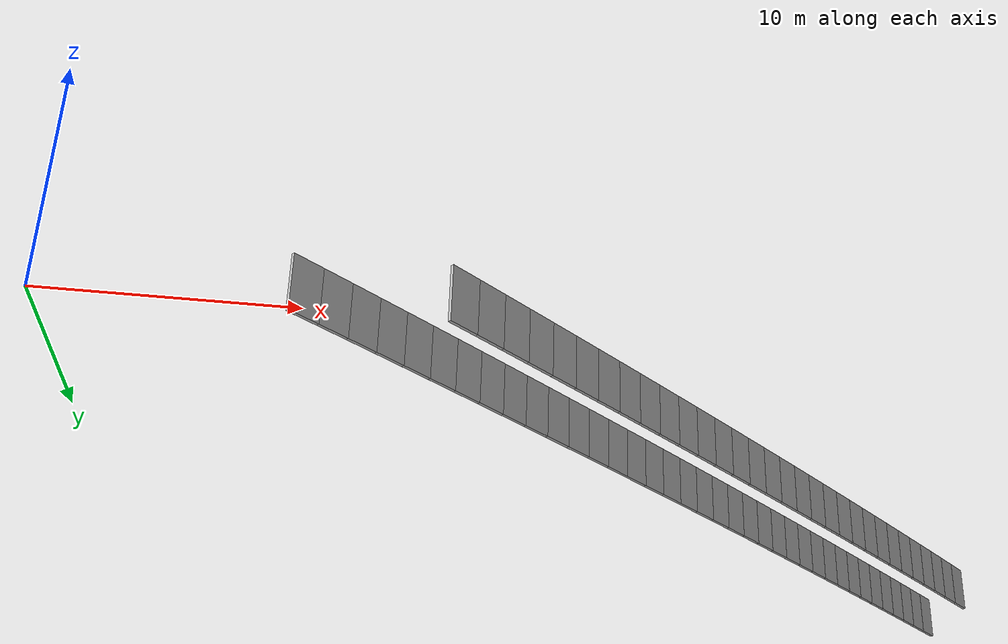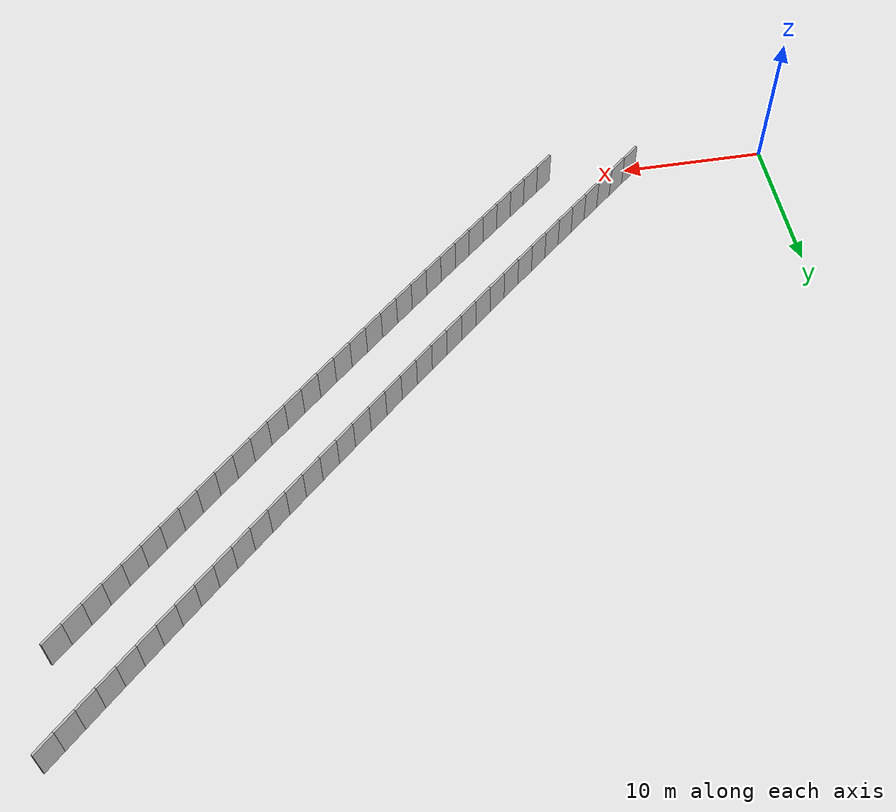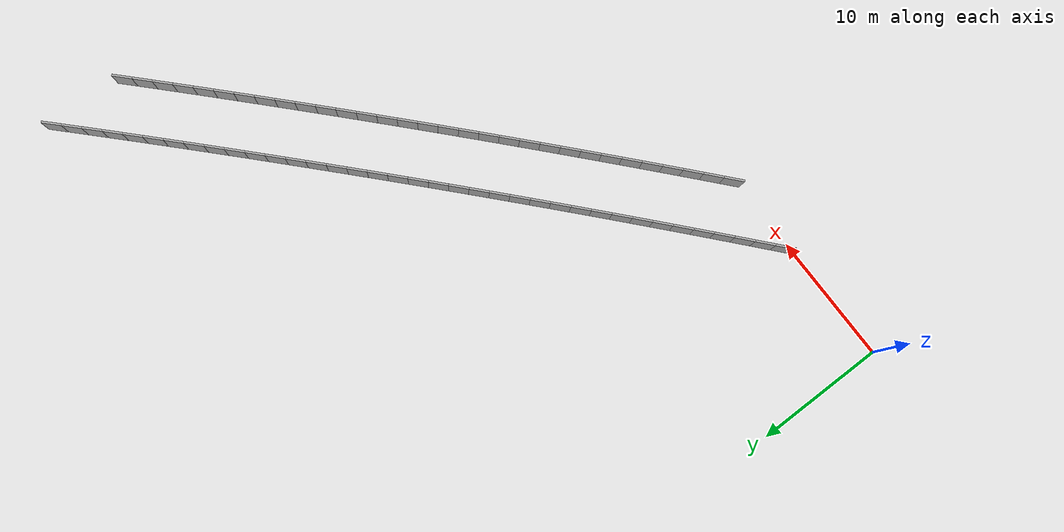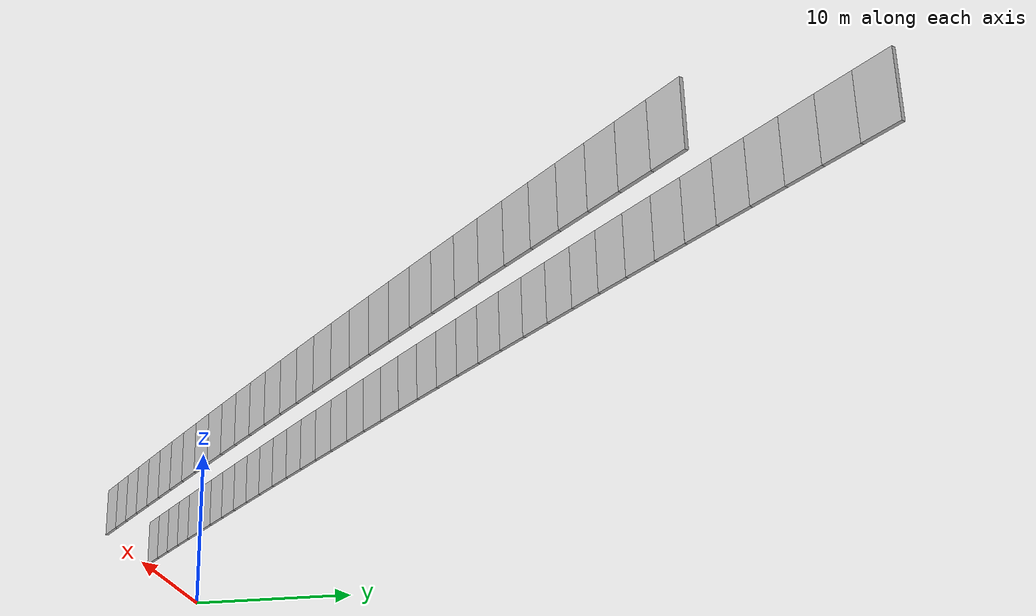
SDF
<?xml version="1.0" ?>
<sdf version="1.6">
  <model name="sps_3808">
    <pose frame="">0 0 0 0 -0 0</pose>
    <static>1</static>
    <self_collide>0</self_collide>
    <allow_auto_disable>0</allow_auto_disable>
    <link name="Wall4116">
      <kinematic>0</kinematic>
      <gravity>1</gravity>
      <self_collide>0</self_collide>
      <collision name="collision">
        <geometry>
          <box>
            <size>1.49647 0.15 2.5</size>
          </box>
        </geometry>
        <pose frame="">0 0 0 0 -0 0</pose>
      </collision>
      <visual name="visual">
        <geometry>
          <box>
            <size>1.49647 0.15 2.5</size>
          </box>
        </geometry>
        <pose frame="">0 0 0 0 -0 0</pose>
        <cast_shadows>1</cast_shadows>
        <transparency>0.0</transparency>
      </visual>
      <pose frame="">9.94445 0.671279 1.25 0 -0 0.715404</pose>
    </link>
    <link name="Wall4117">
      <kinematic>0</kinematic>
      <gravity>1</gravity>
      <self_collide>0</self_collide>
      <collision name="collision">
        <geometry>
          <box>
            <size>1.49663 0.15 2.5</size>
          </box>
        </geometry>
        <pose frame="">0 0 0 0 -0 0</pose>
      </collision>
      <visual name="visual">
        <geometry>
          <box>
            <size>1.49663 0.15 2.5</size>
          </box>
        </geometry>
        <pose frame="">0 0 0 0 -0 0</pose>
        <cast_shadows>1</cast_shadows>
        <transparency>0.0</transparency>
      </visual>
      <pose frame="">11.0732 1.65388 1.25 0 -0 0.717146</pose>
    </link>
    <link name="Wall4118">
      <kinematic>0</kinematic>
      <gravity>1</gravity>
      <self_collide>0</self_collide>
      <collision name="collision">
        <geometry>
          <box>
            <size>1.49644 0.15 2.5</size>
          </box>
        </geometry>
        <pose frame="">0 0 0 0 -0 0</pose>
      </collision>
      <visual name="visual">
        <geometry>
          <box>
            <size>1.49644 0.15 2.5</size>
          </box>
        </geometry>
        <pose frame="">0 0 0 0 -0 0</pose>
        <cast_shadows>1</cast_shadows>
        <transparency>0.0</transparency>
      </visual>
      <pose frame="">12.2004 2.63829 1.25 0 -0 0.718611</pose>
    </link>
    <link name="Wall4119">
      <kinematic>0</kinematic>
      <gravity>1</gravity>
      <self_collide>0</self_collide>
      <collision name="collision">
        <geometry>
          <box>
            <size>1.49675 0.15 2.5</size>
          </box>
        </geometry>
        <pose frame="">0 0 0 0 -0 0</pose>
      </collision>
      <visual name="visual">
        <geometry>
          <box>
            <size>1.49675 0.15 2.5</size>
          </box>
        </geometry>
        <pose frame="">0 0 0 0 -0 0</pose>
        <cast_shadows>1</cast_shadows>
        <transparency>0.0</transparency>
      </visual>
      <pose frame="">13.3261 3.6245 1.25 0 -0 0.720272</pose>
    </link>
    <link name="Wall4120">
      <kinematic>0</kinematic>
      <gravity>1</gravity>
      <self_collide>0</self_collide>
      <collision name="collision">
        <geometry>
          <box>
            <size>1.49643 0.15 2.5</size>
          </box>
        </geometry>
        <pose frame="">0 0 0 0 -0 0</pose>
      </collision>
      <visual name="visual">
        <geometry>
          <box>
            <size>1.49643 0.15 2.5</size>
          </box>
        </geometry>
        <pose frame="">0 0 0 0 -0 0</pose>
        <cast_shadows>1</cast_shadows>
        <transparency>0.0</transparency>
      </visual>
      <pose frame="">14.4502 4.6125 1.25 0 -0 0.721819</pose>
    </link>
    <link name="Wall4121">
      <kinematic>0</kinematic>
      <gravity>1</gravity>
      <self_collide>0</self_collide>
      <collision name="collision">
        <geometry>
          <box>
            <size>1.49654 0.15 2.5</size>
          </box>
        </geometry>
        <pose frame="">0 0 0 0 -0 0</pose>
      </collision>
      <visual name="visual">
        <geometry>
          <box>
            <size>1.49654 0.15 2.5</size>
          </box>
        </geometry>
        <pose frame="">0 0 0 0 -0 0</pose>
        <cast_shadows>1</cast_shadows>
        <transparency>0.0</transparency>
      </visual>
      <pose frame="">15.5727 5.60219 1.25 0 -0 0.723384</pose>
    </link>
    <link name="Wall4122">
      <kinematic>0</kinematic>
      <gravity>1</gravity>
      <self_collide>0</self_collide>
      <collision name="collision">
        <geometry>
          <box>
            <size>1.49645 0.15 2.5</size>
          </box>
        </geometry>
        <pose frame="">0 0 0 0 -0 0</pose>
      </collision>
      <visual name="visual">
        <geometry>
          <box>
            <size>1.49645 0.15 2.5</size>
          </box>
        </geometry>
        <pose frame="">0 0 0 0 -0 0</pose>
        <cast_shadows>1</cast_shadows>
        <transparency>0.0</transparency>
      </visual>
      <pose frame="">16.6937 6.59358 1.25 0 -0 0.724854</pose>
    </link>
    <link name="Wall4123">
      <kinematic>0</kinematic>
      <gravity>1</gravity>
      <self_collide>0</self_collide>
      <collision name="collision">
        <geometry>
          <box>
            <size>1.49642 0.15 2.5</size>
          </box>
        </geometry>
        <pose frame="">0 0 0 0 -0 0</pose>
      </collision>
      <visual name="visual">
        <geometry>
          <box>
            <size>1.49642 0.15 2.5</size>
          </box>
        </geometry>
        <pose frame="">0 0 0 0 -0 0</pose>
        <cast_shadows>1</cast_shadows>
        <transparency>0.0</transparency>
      </visual>
      <pose frame="">17.8131 7.58678 1.25 0 -0 0.726673</pose>
    </link>
    <link name="Wall4124">
      <kinematic>0</kinematic>
      <gravity>1</gravity>
      <self_collide>0</self_collide>
      <collision name="collision">
        <geometry>
          <box>
            <size>1.49643 0.15 2.5</size>
          </box>
        </geometry>
        <pose frame="">0 0 0 0 -0 0</pose>
      </collision>
      <visual name="visual">
        <geometry>
          <box>
            <size>1.49643 0.15 2.5</size>
          </box>
        </geometry>
        <pose frame="">0 0 0 0 -0 0</pose>
        <cast_shadows>1</cast_shadows>
        <transparency>0.0</transparency>
      </visual>
      <pose frame="">18.9308 8.58177 1.25 0 -0 0.728089</pose>
    </link>
    <link name="Wall4125">
      <kinematic>0</kinematic>
      <gravity>1</gravity>
      <self_collide>0</self_collide>
      <collision name="collision">
        <geometry>
          <box>
            <size>1.49672 0.15 2.5</size>
          </box>
        </geometry>
        <pose frame="">0 0 0 0 -0 0</pose>
      </collision>
      <visual name="visual">
        <geometry>
          <box>
            <size>1.49672 0.15 2.5</size>
          </box>
        </geometry>
        <pose frame="">0 0 0 0 -0 0</pose>
        <cast_shadows>1</cast_shadows>
        <transparency>0.0</transparency>
      </visual>
      <pose frame="">20.0471 9.57857 1.25 0 -0 0.729717</pose>
    </link>
    <link name="Wall4126">
      <kinematic>0</kinematic>
      <gravity>1</gravity>
      <self_collide>0</self_collide>
      <collision name="collision">
        <geometry>
          <box>
            <size>1.49646 0.15 2.5</size>
          </box>
        </geometry>
        <pose frame="">0 0 0 0 -0 0</pose>
      </collision>
      <visual name="visual">
        <geometry>
          <box>
            <size>1.49646 0.15 2.5</size>
          </box>
        </geometry>
        <pose frame="">0 0 0 0 -0 0</pose>
        <cast_shadows>1</cast_shadows>
        <transparency>0.0</transparency>
      </visual>
      <pose frame="">21.1618 10.5772 1.25 0 -0 0.731354</pose>
    </link>
    <link name="Wall4127">
      <kinematic>0</kinematic>
      <gravity>1</gravity>
      <self_collide>0</self_collide>
      <collision name="collision">
        <geometry>
          <box>
            <size>1.49642 0.15 2.5</size>
          </box>
        </geometry>
        <pose frame="">0 0 0 0 -0 0</pose>
      </collision>
      <visual name="visual">
        <geometry>
          <box>
            <size>1.49642 0.15 2.5</size>
          </box>
        </geometry>
        <pose frame="">0 0 0 0 -0 0</pose>
        <cast_shadows>1</cast_shadows>
        <transparency>0.0</transparency>
      </visual>
      <pose frame="">22.2747 11.5775 1.25 0 -0 0.732912</pose>
    </link>
    <link name="Wall4128">
      <kinematic>0</kinematic>
      <gravity>1</gravity>
      <self_collide>0</self_collide>
      <collision name="collision">
        <geometry>
          <box>
            <size>1.49665 0.15 2.5</size>
          </box>
        </geometry>
        <pose frame="">0 0 0 0 -0 0</pose>
      </collision>
      <visual name="visual">
        <geometry>
          <box>
            <size>1.49665 0.15 2.5</size>
          </box>
        </geometry>
        <pose frame="">0 0 0 0 -0 0</pose>
        <cast_shadows>1</cast_shadows>
        <transparency>0.0</transparency>
      </visual>
      <pose frame="">23.3863 12.5796 1.25 0 -0 0.734422</pose>
    </link>
    <link name="Wall4129">
      <kinematic>0</kinematic>
      <gravity>1</gravity>
      <self_collide>0</self_collide>
      <collision name="collision">
        <geometry>
          <box>
            <size>1.49665 0.15 2.5</size>
          </box>
        </geometry>
        <pose frame="">0 0 0 0 -0 0</pose>
      </collision>
      <visual name="visual">
        <geometry>
          <box>
            <size>1.49665 0.15 2.5</size>
          </box>
        </geometry>
        <pose frame="">0 0 0 0 -0 0</pose>
        <cast_shadows>1</cast_shadows>
        <transparency>0.0</transparency>
      </visual>
      <pose frame="">24.4963 13.5835 1.25 0 -0 0.736068</pose>
    </link>
    <link name="Wall4130">
      <kinematic>0</kinematic>
      <gravity>1</gravity>
      <self_collide>0</self_collide>
      <collision name="collision">
        <geometry>
          <box>
            <size>1.49649 0.15 2.5</size>
          </box>
        </geometry>
        <pose frame="">0 0 0 0 -0 0</pose>
      </collision>
      <visual name="visual">
        <geometry>
          <box>
            <size>1.49649 0.15 2.5</size>
          </box>
        </geometry>
        <pose frame="">0 0 0 0 -0 0</pose>
        <cast_shadows>1</cast_shadows>
        <transparency>0.0</transparency>
      </visual>
      <pose frame="">25.6045 14.5892 1.25 0 -0 0.737766</pose>
    </link>
    <link name="Wall4131">
      <kinematic>0</kinematic>
      <gravity>1</gravity>
      <self_collide>0</self_collide>
      <collision name="collision">
        <geometry>
          <box>
            <size>1.4966 0.15 2.5</size>
          </box>
        </geometry>
        <pose frame="">0 0 0 0 -0 0</pose>
      </collision>
      <visual name="visual">
        <geometry>
          <box>
            <size>1.4966 0.15 2.5</size>
          </box>
        </geometry>
        <pose frame="">0 0 0 0 -0 0</pose>
        <cast_shadows>1</cast_shadows>
        <transparency>0.0</transparency>
      </visual>
      <pose frame="">26.7112 15.5966 1.25 0 -0 0.739184</pose>
    </link>
    <link name="Wall4132">
      <kinematic>0</kinematic>
      <gravity>1</gravity>
      <self_collide>0</self_collide>
      <collision name="collision">
        <geometry>
          <box>
            <size>1.4964 0.15 2.5</size>
          </box>
        </geometry>
        <pose frame="">0 0 0 0 -0 0</pose>
      </collision>
      <visual name="visual">
        <geometry>
          <box>
            <size>1.4964 0.15 2.5</size>
          </box>
        </geometry>
        <pose frame="">0 0 0 0 -0 0</pose>
        <cast_shadows>1</cast_shadows>
        <transparency>0.0</transparency>
      </visual>
      <pose frame="">27.8163 16.6057 1.25 0 -0 0.740852</pose>
    </link>
    <link name="Wall4133">
      <kinematic>0</kinematic>
      <gravity>1</gravity>
      <self_collide>0</self_collide>
      <collision name="collision">
        <geometry>
          <box>
            <size>1.49669 0.15 2.5</size>
          </box>
        </geometry>
        <pose frame="">0 0 0 0 -0 0</pose>
      </collision>
      <visual name="visual">
        <geometry>
          <box>
            <size>1.49669 0.15 2.5</size>
          </box>
        </geometry>
        <pose frame="">0 0 0 0 -0 0</pose>
        <cast_shadows>1</cast_shadows>
        <transparency>0.0</transparency>
      </visual>
      <pose frame="">28.9199 17.6166 1.25 0 -0 0.742391</pose>
    </link>
    <link name="Wall4134">
      <kinematic>0</kinematic>
      <gravity>1</gravity>
      <self_collide>0</self_collide>
      <collision name="collision">
        <geometry>
          <box>
            <size>1.49651 0.15 2.5</size>
          </box>
        </geometry>
        <pose frame="">0 0 0 0 -0 0</pose>
      </collision>
      <visual name="visual">
        <geometry>
          <box>
            <size>1.49651 0.15 2.5</size>
          </box>
        </geometry>
        <pose frame="">0 0 0 0 -0 0</pose>
        <cast_shadows>1</cast_shadows>
        <transparency>0.0</transparency>
      </visual>
      <pose frame="">30.0219 18.6292 1.25 0 -0 0.743886</pose>
    </link>
    <link name="Wall4135">
      <kinematic>0</kinematic>
      <gravity>1</gravity>
      <self_collide>0</self_collide>
      <collision name="collision">
        <geometry>
          <box>
            <size>1.49641 0.15 2.5</size>
          </box>
        </geometry>
        <pose frame="">0 0 0 0 -0 0</pose>
      </collision>
      <visual name="visual">
        <geometry>
          <box>
            <size>1.49641 0.15 2.5</size>
          </box>
        </geometry>
        <pose frame="">0 0 0 0 -0 0</pose>
        <cast_shadows>1</cast_shadows>
        <transparency>0.0</transparency>
      </visual>
      <pose frame="">31.1222 19.6435 1.25 0 -0 0.745615</pose>
    </link>
    <link name="Wall4136">
      <kinematic>0</kinematic>
      <gravity>1</gravity>
      <self_collide>0</self_collide>
      <collision name="collision">
        <geometry>
          <box>
            <size>1.49666 0.15 2.5</size>
          </box>
        </geometry>
        <pose frame="">0 0 0 0 -0 0</pose>
      </collision>
      <visual name="visual">
        <geometry>
          <box>
            <size>1.49666 0.15 2.5</size>
          </box>
        </geometry>
        <pose frame="">0 0 0 0 -0 0</pose>
        <cast_shadows>1</cast_shadows>
        <transparency>0.0</transparency>
      </visual>
      <pose frame="">32.2208 20.6596 1.25 0 -0 0.747123</pose>
    </link>
    <link name="Wall4137">
      <kinematic>0</kinematic>
      <gravity>1</gravity>
      <self_collide>0</self_collide>
      <collision name="collision">
        <geometry>
          <box>
            <size>1.49652 0.15 2.5</size>
          </box>
        </geometry>
        <pose frame="">0 0 0 0 -0 0</pose>
      </collision>
      <visual name="visual">
        <geometry>
          <box>
            <size>1.49652 0.15 2.5</size>
          </box>
        </geometry>
        <pose frame="">0 0 0 0 -0 0</pose>
        <cast_shadows>1</cast_shadows>
        <transparency>0.0</transparency>
      </visual>
      <pose frame="">33.318 21.6775 1.25 0 -0 0.748822</pose>
    </link>
    <link name="Wall4138">
      <kinematic>0</kinematic>
      <gravity>1</gravity>
      <self_collide>0</self_collide>
      <collision name="collision">
        <geometry>
          <box>
            <size>1.49657 0.15 2.5</size>
          </box>
        </geometry>
        <pose frame="">0 0 0 0 -0 0</pose>
      </collision>
      <visual name="visual">
        <geometry>
          <box>
            <size>1.49657 0.15 2.5</size>
          </box>
        </geometry>
        <pose frame="">0 0 0 0 -0 0</pose>
        <cast_shadows>1</cast_shadows>
        <transparency>0.0</transparency>
      </visual>
      <pose frame="">34.4134 22.6972 1.25 0 -0 0.75041</pose>
    </link>
    <link name="Wall4139">
      <kinematic>0</kinematic>
      <gravity>1</gravity>
      <self_collide>0</self_collide>
      <collision name="collision">
        <geometry>
          <box>
            <size>1.49653 0.15 2.5</size>
          </box>
        </geometry>
        <pose frame="">0 0 0 0 -0 0</pose>
      </collision>
      <visual name="visual">
        <geometry>
          <box>
            <size>1.49653 0.15 2.5</size>
          </box>
        </geometry>
        <pose frame="">0 0 0 0 -0 0</pose>
        <cast_shadows>1</cast_shadows>
        <transparency>0.0</transparency>
      </visual>
      <pose frame="">35.5072 23.7186 1.25 0 -0 0.751939</pose>
    </link>
    <link name="Wall4140">
      <kinematic>0</kinematic>
      <gravity>1</gravity>
      <self_collide>0</self_collide>
      <collision name="collision">
        <geometry>
          <box>
            <size>1.49642 0.15 2.5</size>
          </box>
        </geometry>
        <pose frame="">0 0 0 0 -0 0</pose>
      </collision>
      <visual name="visual">
        <geometry>
          <box>
            <size>1.49642 0.15 2.5</size>
          </box>
        </geometry>
        <pose frame="">0 0 0 0 -0 0</pose>
        <cast_shadows>1</cast_shadows>
        <transparency>0.0</transparency>
      </visual>
      <pose frame="">36.5994 24.7416 1.25 0 -0 0.753466</pose>
    </link>
    <link name="Wall4141">
      <kinematic>0</kinematic>
      <gravity>1</gravity>
      <self_collide>0</self_collide>
      <collision name="collision">
        <geometry>
          <box>
            <size>1.49665 0.15 2.5</size>
          </box>
        </geometry>
        <pose frame="">0 0 0 0 -0 0</pose>
      </collision>
      <visual name="visual">
        <geometry>
          <box>
            <size>1.49665 0.15 2.5</size>
          </box>
        </geometry>
        <pose frame="">0 0 0 0 -0 0</pose>
        <cast_shadows>1</cast_shadows>
        <transparency>0.0</transparency>
      </visual>
      <pose frame="">37.6901 25.7663 1.25 0 -0 0.754942</pose>
    </link>
    <link name="Wall4142">
      <kinematic>0</kinematic>
      <gravity>1</gravity>
      <self_collide>0</self_collide>
      <collision name="collision">
        <geometry>
          <box>
            <size>1.49645 0.15 2.5</size>
          </box>
        </geometry>
        <pose frame="">0 0 0 0 -0 0</pose>
      </collision>
      <visual name="visual">
        <geometry>
          <box>
            <size>1.49645 0.15 2.5</size>
          </box>
        </geometry>
        <pose frame="">0 0 0 0 -0 0</pose>
        <cast_shadows>1</cast_shadows>
        <transparency>0.0</transparency>
      </visual>
      <pose frame="">38.7792 26.7927 1.25 0 -0 0.756582</pose>
    </link>
    <link name="Wall4143">
      <kinematic>0</kinematic>
      <gravity>1</gravity>
      <self_collide>0</self_collide>
      <collision name="collision">
        <geometry>
          <box>
            <size>1.49633 0.15 2.5</size>
          </box>
        </geometry>
        <pose frame="">0 0 0 0 -0 0</pose>
      </collision>
      <visual name="visual">
        <geometry>
          <box>
            <size>1.49633 0.15 2.5</size>
          </box>
        </geometry>
        <pose frame="">0 0 0 0 -0 0</pose>
        <cast_shadows>1</cast_shadows>
        <transparency>0.0</transparency>
      </visual>
      <pose frame="">39.8664 27.8208 1.25 0 -0 0.758283</pose>
    </link>
    <link name="Wall4144">
      <kinematic>0</kinematic>
      <gravity>1</gravity>
      <self_collide>0</self_collide>
      <collision name="collision">
        <geometry>
          <box>
            <size>1.49675 0.15 2.5</size>
          </box>
        </geometry>
        <pose frame="">0 0 0 0 -0 0</pose>
      </collision>
      <visual name="visual">
        <geometry>
          <box>
            <size>1.49675 0.15 2.5</size>
          </box>
        </geometry>
        <pose frame="">0 0 0 0 -0 0</pose>
        <cast_shadows>1</cast_shadows>
        <transparency>0.0</transparency>
      </visual>
      <pose frame="">40.9521 28.8508 1.25 0 -0 0.759877</pose>
    </link>
    <link name="Wall4145">
      <kinematic>0</kinematic>
      <gravity>1</gravity>
      <self_collide>0</self_collide>
      <collision name="collision">
        <geometry>
          <box>
            <size>1.49651 0.15 2.5</size>
          </box>
        </geometry>
        <pose frame="">0 0 0 0 -0 0</pose>
      </collision>
      <visual name="visual">
        <geometry>
          <box>
            <size>1.49651 0.15 2.5</size>
          </box>
        </geometry>
        <pose frame="">0 0 0 0 -0 0</pose>
        <cast_shadows>1</cast_shadows>
        <transparency>0.0</transparency>
      </visual>
      <pose frame="">42.0362 29.8826 1.25 0 -0 0.761488</pose>
    </link>
    <link name="Wall4146">
      <kinematic>0</kinematic>
      <gravity>1</gravity>
      <self_collide>0</self_collide>
      <collision name="collision">
        <geometry>
          <box>
            <size>1.49633 0.15 2.5</size>
          </box>
        </geometry>
        <pose frame="">0 0 0 0 -0 0</pose>
      </collision>
      <visual name="visual">
        <geometry>
          <box>
            <size>1.49633 0.15 2.5</size>
          </box>
        </geometry>
        <pose frame="">0 0 0 0 -0 0</pose>
        <cast_shadows>1</cast_shadows>
        <transparency>0.0</transparency>
      </visual>
      <pose frame="">43.1186 30.9159 1.25 0 -0 0.762899</pose>
    </link>
    <link name="Wall4147">
      <kinematic>0</kinematic>
      <gravity>1</gravity>
      <self_collide>0</self_collide>
      <collision name="collision">
        <geometry>
          <box>
            <size>1.49658 0.15 2.5</size>
          </box>
        </geometry>
        <pose frame="">0 0 0 0 -0 0</pose>
      </collision>
      <visual name="visual">
        <geometry>
          <box>
            <size>1.49658 0.15 2.5</size>
          </box>
        </geometry>
        <pose frame="">0 0 0 0 -0 0</pose>
        <cast_shadows>1</cast_shadows>
        <transparency>0.0</transparency>
      </visual>
      <pose frame="">44.1995 31.9509 1.25 0 -0 0.764604</pose>
    </link>
    <link name="Wall4148">
      <kinematic>0</kinematic>
      <gravity>1</gravity>
      <self_collide>0</self_collide>
      <collision name="collision">
        <geometry>
          <box>
            <size>1.49662 0.15 2.5</size>
          </box>
        </geometry>
        <pose frame="">0 0 0 0 -0 0</pose>
      </collision>
      <visual name="visual">
        <geometry>
          <box>
            <size>1.49662 0.15 2.5</size>
          </box>
        </geometry>
        <pose frame="">0 0 0 0 -0 0</pose>
        <cast_shadows>1</cast_shadows>
        <transparency>0.0</transparency>
      </visual>
      <pose frame="">45.2786 32.9878 1.25 0 -0 0.76622</pose>
    </link>
    <link name="Wall4149">
      <kinematic>0</kinematic>
      <gravity>1</gravity>
      <self_collide>0</self_collide>
      <collision name="collision">
        <geometry>
          <box>
            <size>1.49649 0.15 2.5</size>
          </box>
        </geometry>
        <pose frame="">0 0 0 0 -0 0</pose>
      </collision>
      <visual name="visual">
        <geometry>
          <box>
            <size>1.49649 0.15 2.5</size>
          </box>
        </geometry>
        <pose frame="">0 0 0 0 -0 0</pose>
        <cast_shadows>1</cast_shadows>
        <transparency>0.0</transparency>
      </visual>
      <pose frame="">46.3561 34.0264 1.25 0 -0 0.767834</pose>
    </link>
    <link name="Wall4150">
      <kinematic>0</kinematic>
      <gravity>1</gravity>
      <self_collide>0</self_collide>
      <collision name="collision">
        <geometry>
          <box>
            <size>1.49645 0.15 2.5</size>
          </box>
        </geometry>
        <pose frame="">0 0 0 0 -0 0</pose>
      </collision>
      <visual name="visual">
        <geometry>
          <box>
            <size>1.49645 0.15 2.5</size>
          </box>
        </geometry>
        <pose frame="">0 0 0 0 -0 0</pose>
        <cast_shadows>1</cast_shadows>
        <transparency>0.0</transparency>
      </visual>
      <pose frame="">47.4319 35.0666 1.25 0 -0 0.769333</pose>
    </link>
    <link name="Wall4151">
      <kinematic>0</kinematic>
      <gravity>1</gravity>
      <self_collide>0</self_collide>
      <collision name="collision">
        <geometry>
          <box>
            <size>1.4968 0.15 2.5</size>
          </box>
        </geometry>
        <pose frame="">0 0 0 0 -0 0</pose>
      </collision>
      <visual name="visual">
        <geometry>
          <box>
            <size>1.4968 0.15 2.5</size>
          </box>
        </geometry>
        <pose frame="">0 0 0 0 -0 0</pose>
        <cast_shadows>1</cast_shadows>
        <transparency>0.0</transparency>
      </visual>
      <pose frame="">48.5062 36.1086 1.25 0 -0 0.770923</pose>
    </link>
    <link name="Wall4152">
      <kinematic>0</kinematic>
      <gravity>1</gravity>
      <self_collide>0</self_collide>
      <collision name="collision">
        <geometry>
          <box>
            <size>1.49651 0.15 2.5</size>
          </box>
        </geometry>
        <pose frame="">0 0 0 0 -0 0</pose>
      </collision>
      <visual name="visual">
        <geometry>
          <box>
            <size>1.49651 0.15 2.5</size>
          </box>
        </geometry>
        <pose frame="">0 0 0 0 -0 0</pose>
        <cast_shadows>1</cast_shadows>
        <transparency>0.0</transparency>
      </visual>
      <pose frame="">49.5789 37.1523 1.25 0 -0 0.772478</pose>
    </link>
    <link name="Wall7894">
      <kinematic>0</kinematic>
      <gravity>1</gravity>
      <self_collide>0</self_collide>
      <collision name="collision">
        <geometry>
          <box>
            <size>1.50307 0.15 2.5</size>
          </box>
        </geometry>
        <pose frame="">0 0 0 0 -0 0</pose>
      </collision>
      <visual name="visual">
        <geometry>
          <box>
            <size>1.50307 0.15 2.5</size>
          </box>
        </geometry>
        <pose frame="">0 0 0 0 -0 0</pose>
        <cast_shadows>1</cast_shadows>
        <transparency>0.0</transparency>
      </visual>
      <pose frame="">16.0578 0.512984 1.25 0 -0 0.720259</pose>
    </link>
    <link name="Wall7895">
      <kinematic>0</kinematic>
      <gravity>1</gravity>
      <self_collide>0</self_collide>
      <collision name="collision">
        <geometry>
          <box>
            <size>1.50313 0.15 2.5</size>
          </box>
        </geometry>
        <pose frame="">0 0 0 0 -0 0</pose>
      </collision>
      <visual name="visual">
        <geometry>
          <box>
            <size>1.50313 0.15 2.5</size>
          </box>
        </geometry>
        <pose frame="">0 0 0 0 -0 0</pose>
        <cast_shadows>1</cast_shadows>
        <transparency>0.0</transparency>
      </visual>
      <pose frame="">17.1868 1.50529 1.25 0 -0 0.721844</pose>
    </link>
    <link name="Wall7896">
      <kinematic>0</kinematic>
      <gravity>1</gravity>
      <self_collide>0</self_collide>
      <collision name="collision">
        <geometry>
          <box>
            <size>1.50321 0.15 2.5</size>
          </box>
        </geometry>
        <pose frame="">0 0 0 0 -0 0</pose>
      </collision>
      <visual name="visual">
        <geometry>
          <box>
            <size>1.50321 0.15 2.5</size>
          </box>
        </geometry>
        <pose frame="">0 0 0 0 -0 0</pose>
        <cast_shadows>1</cast_shadows>
        <transparency>0.0</transparency>
      </visual>
      <pose frame="">18.3143 2.4994 1.25 0 -0 0.723372</pose>
    </link>
    <link name="Wall7897">
      <kinematic>0</kinematic>
      <gravity>1</gravity>
      <self_collide>0</self_collide>
      <collision name="collision">
        <geometry>
          <box>
            <size>1.50293 0.15 2.5</size>
          </box>
        </geometry>
        <pose frame="">0 0 0 0 -0 0</pose>
      </collision>
      <visual name="visual">
        <geometry>
          <box>
            <size>1.50293 0.15 2.5</size>
          </box>
        </geometry>
        <pose frame="">0 0 0 0 -0 0</pose>
        <cast_shadows>1</cast_shadows>
        <transparency>0.0</transparency>
      </visual>
      <pose frame="">19.4401 3.49519 1.25 0 -0 0.724943</pose>
    </link>
    <link name="Wall7898">
      <kinematic>0</kinematic>
      <gravity>1</gravity>
      <self_collide>0</self_collide>
      <collision name="collision">
        <geometry>
          <box>
            <size>1.50322 0.15 2.5</size>
          </box>
        </geometry>
        <pose frame="">0 0 0 0 -0 0</pose>
      </collision>
      <visual name="visual">
        <geometry>
          <box>
            <size>1.50322 0.15 2.5</size>
          </box>
        </geometry>
        <pose frame="">0 0 0 0 -0 0</pose>
        <cast_shadows>1</cast_shadows>
        <transparency>0.0</transparency>
      </visual>
      <pose frame="">20.5644 4.49278 1.25 0 -0 0.726565</pose>
    </link>
    <link name="Wall7899">
      <kinematic>0</kinematic>
      <gravity>1</gravity>
      <self_collide>0</self_collide>
      <collision name="collision">
        <geometry>
          <box>
            <size>1.50295 0.15 2.5</size>
          </box>
        </geometry>
        <pose frame="">0 0 0 0 -0 0</pose>
      </collision>
      <visual name="visual">
        <geometry>
          <box>
            <size>1.50295 0.15 2.5</size>
          </box>
        </geometry>
        <pose frame="">0 0 0 0 -0 0</pose>
        <cast_shadows>1</cast_shadows>
        <transparency>0.0</transparency>
      </visual>
      <pose frame="">21.6872 5.49217 1.25 0 -0 0.728136</pose>
    </link>
    <link name="Wall7900">
      <kinematic>0</kinematic>
      <gravity>1</gravity>
      <self_collide>0</self_collide>
      <collision name="collision">
        <geometry>
          <box>
            <size>1.50308 0.15 2.5</size>
          </box>
        </geometry>
        <pose frame="">0 0 0 0 -0 0</pose>
      </collision>
      <visual name="visual">
        <geometry>
          <box>
            <size>1.50308 0.15 2.5</size>
          </box>
        </geometry>
        <pose frame="">0 0 0 0 -0 0</pose>
        <cast_shadows>1</cast_shadows>
        <transparency>0.0</transparency>
      </visual>
      <pose frame="">22.8082 6.49327 1.25 0 -0 0.729694</pose>
    </link>
    <link name="Wall7901">
      <kinematic>0</kinematic>
      <gravity>1</gravity>
      <self_collide>0</self_collide>
      <collision name="collision">
        <geometry>
          <box>
            <size>1.50316 0.15 2.5</size>
          </box>
        </geometry>
        <pose frame="">0 0 0 0 -0 0</pose>
      </collision>
      <visual name="visual">
        <geometry>
          <box>
            <size>1.50316 0.15 2.5</size>
          </box>
        </geometry>
        <pose frame="">0 0 0 0 -0 0</pose>
        <cast_shadows>1</cast_shadows>
        <transparency>0.0</transparency>
      </visual>
      <pose frame="">23.9278 7.4962 1.25 0 -0 0.731279</pose>
    </link>
    <link name="Wall7902">
      <kinematic>0</kinematic>
      <gravity>1</gravity>
      <self_collide>0</self_collide>
      <collision name="collision">
        <geometry>
          <box>
            <size>1.50324 0.15 2.5</size>
          </box>
        </geometry>
        <pose frame="">0 0 0 0 -0 0</pose>
      </collision>
      <visual name="visual">
        <geometry>
          <box>
            <size>1.50324 0.15 2.5</size>
          </box>
        </geometry>
        <pose frame="">0 0 0 0 -0 0</pose>
        <cast_shadows>1</cast_shadows>
        <transparency>0.0</transparency>
      </visual>
      <pose frame="">25.0459 8.50102 1.25 0 -0 0.732978</pose>
    </link>
    <link name="Wall7903">
      <kinematic>0</kinematic>
      <gravity>1</gravity>
      <self_collide>0</self_collide>
      <collision name="collision">
        <geometry>
          <box>
            <size>1.50313 0.15 2.5</size>
          </box>
        </geometry>
        <pose frame="">0 0 0 0 -0 0</pose>
      </collision>
      <visual name="visual">
        <geometry>
          <box>
            <size>1.50313 0.15 2.5</size>
          </box>
        </geometry>
        <pose frame="">0 0 0 0 -0 0</pose>
        <cast_shadows>1</cast_shadows>
        <transparency>0.0</transparency>
      </visual>
      <pose frame="">26.1623 9.50761 1.25 0 -0 0.734469</pose>
    </link>
    <link name="Wall7904">
      <kinematic>0</kinematic>
      <gravity>1</gravity>
      <self_collide>0</self_collide>
      <collision name="collision">
        <geometry>
          <box>
            <size>1.50301 0.15 2.5</size>
          </box>
        </geometry>
        <pose frame="">0 0 0 0 -0 0</pose>
      </collision>
      <visual name="visual">
        <geometry>
          <box>
            <size>1.50301 0.15 2.5</size>
          </box>
        </geometry>
        <pose frame="">0 0 0 0 -0 0</pose>
        <cast_shadows>1</cast_shadows>
        <transparency>0.0</transparency>
      </visual>
      <pose frame="">27.2771 10.5158 1.25 0 -0 0.73596</pose>
    </link>
    <link name="Wall7905">
      <kinematic>0</kinematic>
      <gravity>1</gravity>
      <self_collide>0</self_collide>
      <collision name="collision">
        <geometry>
          <box>
            <size>1.50315 0.15 2.5</size>
          </box>
        </geometry>
        <pose frame="">0 0 0 0 -0 0</pose>
      </collision>
      <visual name="visual">
        <geometry>
          <box>
            <size>1.50315 0.15 2.5</size>
          </box>
        </geometry>
        <pose frame="">0 0 0 0 -0 0</pose>
        <cast_shadows>1</cast_shadows>
        <transparency>0.0</transparency>
      </visual>
      <pose frame="">28.3903 11.5258 1.25 0 -0 0.737689</pose>
    </link>
    <link name="Wall7906">
      <kinematic>0</kinematic>
      <gravity>1</gravity>
      <self_collide>0</self_collide>
      <collision name="collision">
        <geometry>
          <box>
            <size>1.50295 0.15 2.5</size>
          </box>
        </geometry>
        <pose frame="">0 0 0 0 -0 0</pose>
      </collision>
      <visual name="visual">
        <geometry>
          <box>
            <size>1.50295 0.15 2.5</size>
          </box>
        </geometry>
        <pose frame="">0 0 0 0 -0 0</pose>
        <cast_shadows>1</cast_shadows>
        <transparency>0.0</transparency>
      </visual>
      <pose frame="">29.5017 12.5376 1.25 0 -0 0.739293</pose>
    </link>
    <link name="Wall7907">
      <kinematic>0</kinematic>
      <gravity>1</gravity>
      <self_collide>0</self_collide>
      <collision name="collision">
        <geometry>
          <box>
            <size>1.50309 0.15 2.5</size>
          </box>
        </geometry>
        <pose frame="">0 0 0 0 -0 0</pose>
      </collision>
      <visual name="visual">
        <geometry>
          <box>
            <size>1.50309 0.15 2.5</size>
          </box>
        </geometry>
        <pose frame="">0 0 0 0 -0 0</pose>
        <cast_shadows>1</cast_shadows>
        <transparency>0.0</transparency>
      </visual>
      <pose frame="">30.6115 13.5512 1.25 0 -0 0.740964</pose>
    </link>
    <link name="Wall7908">
      <kinematic>0</kinematic>
      <gravity>1</gravity>
      <self_collide>0</self_collide>
      <collision name="collision">
        <geometry>
          <box>
            <size>1.50301 0.15 2.5</size>
          </box>
        </geometry>
        <pose frame="">0 0 0 0 -0 0</pose>
      </collision>
      <visual name="visual">
        <geometry>
          <box>
            <size>1.50301 0.15 2.5</size>
          </box>
        </geometry>
        <pose frame="">0 0 0 0 -0 0</pose>
        <cast_shadows>1</cast_shadows>
        <transparency>0.0</transparency>
      </visual>
      <pose frame="">31.7198 14.5665 1.25 0 -0 0.742284</pose>
    </link>
    <link name="Wall7909">
      <kinematic>0</kinematic>
      <gravity>1</gravity>
      <self_collide>0</self_collide>
      <collision name="collision">
        <geometry>
          <box>
            <size>1.5032 0.15 2.5</size>
          </box>
        </geometry>
        <pose frame="">0 0 0 0 -0 0</pose>
      </collision>
      <visual name="visual">
        <geometry>
          <box>
            <size>1.5032 0.15 2.5</size>
          </box>
        </geometry>
        <pose frame="">0 0 0 0 -0 0</pose>
        <cast_shadows>1</cast_shadows>
        <transparency>0.0</transparency>
      </visual>
      <pose frame="">32.8267 15.5835 1.25 0 -0 0.743985</pose>
    </link>
    <link name="Wall7910">
      <kinematic>0</kinematic>
      <gravity>1</gravity>
      <self_collide>0</self_collide>
      <collision name="collision">
        <geometry>
          <box>
            <size>1.50293 0.15 2.5</size>
          </box>
        </geometry>
        <pose frame="">0 0 0 0 -0 0</pose>
      </collision>
      <visual name="visual">
        <geometry>
          <box>
            <size>1.50293 0.15 2.5</size>
          </box>
        </geometry>
        <pose frame="">0 0 0 0 -0 0</pose>
        <cast_shadows>1</cast_shadows>
        <transparency>0.0</transparency>
      </visual>
      <pose frame="">33.9318 16.6023 1.25 0 -0 0.745587</pose>
    </link>
    <link name="Wall7911">
      <kinematic>0</kinematic>
      <gravity>1</gravity>
      <self_collide>0</self_collide>
      <collision name="collision">
        <geometry>
          <box>
            <size>1.50314 0.15 2.5</size>
          </box>
        </geometry>
        <pose frame="">0 0 0 0 -0 0</pose>
      </collision>
      <visual name="visual">
        <geometry>
          <box>
            <size>1.50314 0.15 2.5</size>
          </box>
        </geometry>
        <pose frame="">0 0 0 0 -0 0</pose>
        <cast_shadows>1</cast_shadows>
        <transparency>0.0</transparency>
      </visual>
      <pose frame="">35.0352 17.6228 1.25 0 -0 0.747116</pose>
    </link>
    <link name="Wall7912">
      <kinematic>0</kinematic>
      <gravity>1</gravity>
      <self_collide>0</self_collide>
      <collision name="collision">
        <geometry>
          <box>
            <size>1.50305 0.15 2.5</size>
          </box>
        </geometry>
        <pose frame="">0 0 0 0 -0 0</pose>
      </collision>
      <visual name="visual">
        <geometry>
          <box>
            <size>1.50305 0.15 2.5</size>
          </box>
        </geometry>
        <pose frame="">0 0 0 0 -0 0</pose>
        <cast_shadows>1</cast_shadows>
        <transparency>0.0</transparency>
      </visual>
      <pose frame="">36.1371 18.6451 1.25 0 -0 0.74878</pose>
    </link>
    <link name="Wall7913">
      <kinematic>0</kinematic>
      <gravity>1</gravity>
      <self_collide>0</self_collide>
      <collision name="collision">
        <geometry>
          <box>
            <size>1.50297 0.15 2.5</size>
          </box>
        </geometry>
        <pose frame="">0 0 0 0 -0 0</pose>
      </collision>
      <visual name="visual">
        <geometry>
          <box>
            <size>1.50297 0.15 2.5</size>
          </box>
        </geometry>
        <pose frame="">0 0 0 0 -0 0</pose>
        <cast_shadows>1</cast_shadows>
        <transparency>0.0</transparency>
      </visual>
      <pose frame="">37.2374 19.6691 1.25 0 -0 0.750272</pose>
    </link>
    <link name="Wall7914">
      <kinematic>0</kinematic>
      <gravity>1</gravity>
      <self_collide>0</self_collide>
      <collision name="collision">
        <geometry>
          <box>
            <size>1.50327 0.15 2.5</size>
          </box>
        </geometry>
        <pose frame="">0 0 0 0 -0 0</pose>
      </collision>
      <visual name="visual">
        <geometry>
          <box>
            <size>1.50327 0.15 2.5</size>
          </box>
        </geometry>
        <pose frame="">0 0 0 0 -0 0</pose>
        <cast_shadows>1</cast_shadows>
        <transparency>0.0</transparency>
      </visual>
      <pose frame="">38.3361 20.6949 1.25 0 -0 0.751916</pose>
    </link>
    <link name="Wall7915">
      <kinematic>0</kinematic>
      <gravity>1</gravity>
      <self_collide>0</self_collide>
      <collision name="collision">
        <geometry>
          <box>
            <size>1.50315 0.15 2.5</size>
          </box>
        </geometry>
        <pose frame="">0 0 0 0 -0 0</pose>
      </collision>
      <visual name="visual">
        <geometry>
          <box>
            <size>1.50315 0.15 2.5</size>
          </box>
        </geometry>
        <pose frame="">0 0 0 0 -0 0</pose>
        <cast_shadows>1</cast_shadows>
        <transparency>0.0</transparency>
      </visual>
      <pose frame="">39.4332 21.7225 1.25 0 -0 0.753494</pose>
    </link>
    <link name="Wall7916">
      <kinematic>0</kinematic>
      <gravity>1</gravity>
      <self_collide>0</self_collide>
      <collision name="collision">
        <geometry>
          <box>
            <size>1.50298 0.15 2.5</size>
          </box>
        </geometry>
        <pose frame="">0 0 0 0 -0 0</pose>
      </collision>
      <visual name="visual">
        <geometry>
          <box>
            <size>1.50298 0.15 2.5</size>
          </box>
        </geometry>
        <pose frame="">0 0 0 0 -0 0</pose>
        <cast_shadows>1</cast_shadows>
        <transparency>0.0</transparency>
      </visual>
      <pose frame="">40.5285 22.7518 1.25 0 -0 0.755214</pose>
    </link>
    <link name="Wall7917">
      <kinematic>0</kinematic>
      <gravity>1</gravity>
      <self_collide>0</self_collide>
      <collision name="collision">
        <geometry>
          <box>
            <size>1.5031 0.15 2.5</size>
          </box>
        </geometry>
        <pose frame="">0 0 0 0 -0 0</pose>
      </collision>
      <visual name="visual">
        <geometry>
          <box>
            <size>1.5031 0.15 2.5</size>
          </box>
        </geometry>
        <pose frame="">0 0 0 0 -0 0</pose>
        <cast_shadows>1</cast_shadows>
        <transparency>0.0</transparency>
      </visual>
      <pose frame="">41.6222 23.7828 1.25 0 -0 0.756595</pose>
    </link>
    <link name="Wall7918">
      <kinematic>0</kinematic>
      <gravity>1</gravity>
      <self_collide>0</self_collide>
      <collision name="collision">
        <geometry>
          <box>
            <size>1.50311 0.15 2.5</size>
          </box>
        </geometry>
        <pose frame="">0 0 0 0 -0 0</pose>
      </collision>
      <visual name="visual">
        <geometry>
          <box>
            <size>1.50311 0.15 2.5</size>
          </box>
        </geometry>
        <pose frame="">0 0 0 0 -0 0</pose>
        <cast_shadows>1</cast_shadows>
        <transparency>0.0</transparency>
      </visual>
      <pose frame="">42.7143 24.8155 1.25 0 -0 0.758204</pose>
    </link>
    <link name="Wall7919">
      <kinematic>0</kinematic>
      <gravity>1</gravity>
      <self_collide>0</self_collide>
      <collision name="collision">
        <geometry>
          <box>
            <size>1.50309 0.15 2.5</size>
          </box>
        </geometry>
        <pose frame="">0 0 0 0 -0 0</pose>
      </collision>
      <visual name="visual">
        <geometry>
          <box>
            <size>1.50309 0.15 2.5</size>
          </box>
        </geometry>
        <pose frame="">0 0 0 0 -0 0</pose>
        <cast_shadows>1</cast_shadows>
        <transparency>0.0</transparency>
      </visual>
      <pose frame="">43.8048 25.85 1.25 0 -0 0.759898</pose>
    </link>
    <link name="Wall7920">
      <kinematic>0</kinematic>
      <gravity>1</gravity>
      <self_collide>0</self_collide>
      <collision name="collision">
        <geometry>
          <box>
            <size>1.50304 0.15 2.5</size>
          </box>
        </geometry>
        <pose frame="">0 0 0 0 -0 0</pose>
      </collision>
      <visual name="visual">
        <geometry>
          <box>
            <size>1.50304 0.15 2.5</size>
          </box>
        </geometry>
        <pose frame="">0 0 0 0 -0 0</pose>
        <cast_shadows>1</cast_shadows>
        <transparency>0.0</transparency>
      </visual>
      <pose frame="">44.8936 26.8862 1.25 0 -0 0.761391</pose>
    </link>
    <link name="Wall7921">
      <kinematic>0</kinematic>
      <gravity>1</gravity>
      <self_collide>0</self_collide>
      <collision name="collision">
        <geometry>
          <box>
            <size>1.50315 0.15 2.5</size>
          </box>
        </geometry>
        <pose frame="">0 0 0 0 -0 0</pose>
      </collision>
      <visual name="visual">
        <geometry>
          <box>
            <size>1.50315 0.15 2.5</size>
          </box>
        </geometry>
        <pose frame="">0 0 0 0 -0 0</pose>
        <cast_shadows>1</cast_shadows>
        <transparency>0.0</transparency>
      </visual>
      <pose frame="">45.9809 27.9241 1.25 0 -0 0.763001</pose>
    </link>
    <link name="Wall7922">
      <kinematic>0</kinematic>
      <gravity>1</gravity>
      <self_collide>0</self_collide>
      <collision name="collision">
        <geometry>
          <box>
            <size>1.50319 0.15 2.5</size>
          </box>
        </geometry>
        <pose frame="">0 0 0 0 -0 0</pose>
      </collision>
      <visual name="visual">
        <geometry>
          <box>
            <size>1.50319 0.15 2.5</size>
          </box>
        </geometry>
        <pose frame="">0 0 0 0 -0 0</pose>
        <cast_shadows>1</cast_shadows>
        <transparency>0.0</transparency>
      </visual>
      <pose frame="">47.0665 28.9638 1.25 0 -0 0.76461</pose>
    </link>
    <link name="Wall7923">
      <kinematic>0</kinematic>
      <gravity>1</gravity>
      <self_collide>0</self_collide>
      <collision name="collision">
        <geometry>
          <box>
            <size>1.50318 0.15 2.5</size>
          </box>
        </geometry>
        <pose frame="">0 0 0 0 -0 0</pose>
      </collision>
      <visual name="visual">
        <geometry>
          <box>
            <size>1.50318 0.15 2.5</size>
          </box>
        </geometry>
        <pose frame="">0 0 0 0 -0 0</pose>
        <cast_shadows>1</cast_shadows>
        <transparency>0.0</transparency>
      </visual>
      <pose frame="">48.1504 30.0052 1.25 0 -0 0.766132</pose>
    </link>
    <link name="Wall7924">
      <kinematic>0</kinematic>
      <gravity>1</gravity>
      <self_collide>0</self_collide>
      <collision name="collision">
        <geometry>
          <box>
            <size>1.50284 0.15 2.5</size>
          </box>
        </geometry>
        <pose frame="">0 0 0 0 -0 0</pose>
      </collision>
      <visual name="visual">
        <geometry>
          <box>
            <size>1.50284 0.15 2.5</size>
          </box>
        </geometry>
        <pose frame="">0 0 0 0 -0 0</pose>
        <cast_shadows>1</cast_shadows>
        <transparency>0.0</transparency>
      </visual>
      <pose frame="">49.2327 31.0482 1.25 0 -0 0.767764</pose>
    </link>
  </model>
</sdf>
